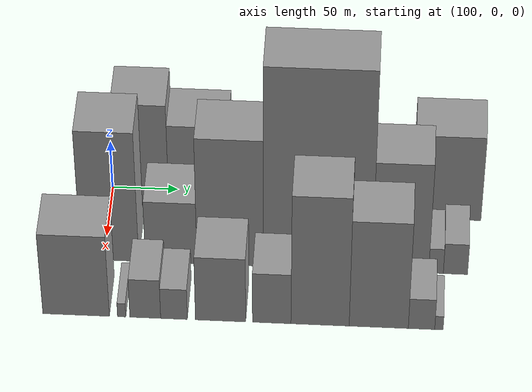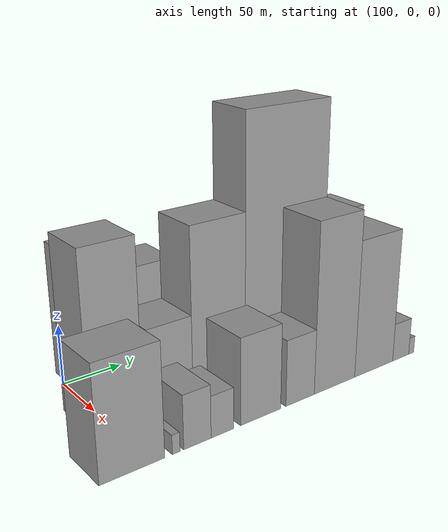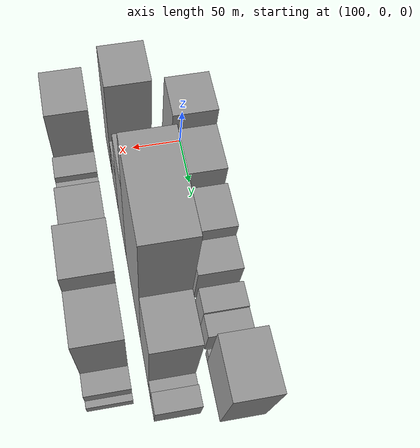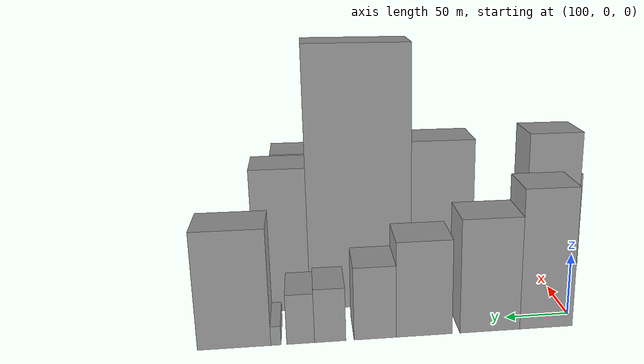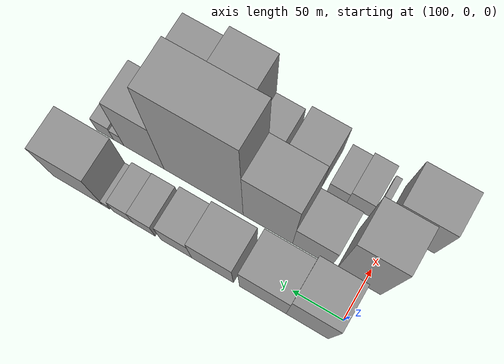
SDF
<sdf version="1.6">
 <world name="default">
  <model name="building_18">
   <static>1</static>
   <pose>100.0000 24.0642 0 0.000000 0.000000 0.000000</pose>
   <link name="link">
    <pose>0 0 55.50 0 0 0</pose>
    <collision name="collision"><geometry><box><size>40.0000 41.2345 111.0000</size></box></geometry></collision>
    <visual name="visual">
     <cast_shadows>0</cast_shadows>
     <geometry><box><size>40.0000 41.2345 111.0000</size></box></geometry>
     <material>
      <script>
       <uri>model://grey_wall/materials/scripts</uri>
       <uri>model://grey_wall/materials/textures</uri>
       <name>vrc/grey_wall</name>
      </script>
     </material>
    </visual>
   </link>
  </model>
  <model name="building_19">
   <static>1</static>
   <pose>100.0000 67.6600 0 0.000000 0.000000 0.000000</pose>
   <link name="link">
    <pose>0 0 45.00 0 0 0</pose>
    <collision name="collision"><geometry><box><size>40.0000 45.9570 90.0000</size></box></geometry></collision>
    <visual name="visual">
     <cast_shadows>0</cast_shadows>
     <geometry><box><size>40.0000 45.9570 90.0000</size></box></geometry>
     <material>
      <script>
       <uri>model://grey_wall/materials/scripts</uri>
       <uri>model://grey_wall/materials/textures</uri>
       <name>vrc/grey_wall</name>
      </script>
     </material>
    </visual>
   </link>
  </model>
  <model name="building_20">
   <static>1</static>
   <pose>100.0000 117.6161 0 0.000000 0.000000 0.000000</pose>
   <link name="link">
    <pose>0 0 37.50 0 0 0</pose>
    <collision name="collision"><geometry><box><size>40.0000 41.9552 75.0000</size></box></geometry></collision>
    <visual name="visual">
     <cast_shadows>0</cast_shadows>
     <geometry><box><size>40.0000 41.9552 75.0000</size></box></geometry>
     <material>
      <script>
       <uri>model://grey_wall/materials/scripts</uri>
       <uri>model://grey_wall/materials/textures</uri>
       <name>vrc/grey_wall</name>
      </script>
     </material>
    </visual>
   </link>
  </model>
  <model name="building_21">
   <static>1</static>
   <pose>100.0000 154.2521 0 0.000000 0.000000 0.000000</pose>
   <link name="link">
    <pose>0 0 28.50 0 0 0</pose>
    <collision name="collision"><geometry><box><size>40.0000 31.3169 57.0000</size></box></geometry></collision>
    <visual name="visual">
     <cast_shadows>0</cast_shadows>
     <geometry><box><size>40.0000 31.3169 57.0000</size></box></geometry>
     <material>
      <script>
       <uri>model://grey_wall/materials/scripts</uri>
       <uri>model://grey_wall/materials/textures</uri>
       <name>vrc/grey_wall</name>
      </script>
     </material>
    </visual>
   </link>
  </model>
  <model name="building_22">
   <static>1</static>
   <pose>100.0000 187.3715 0 0.000000 0.000000 0.000000</pose>
   <link name="link">
    <pose>0 0 21.00 0 0 0</pose>
    <collision name="collision"><geometry><box><size>40.0000 22.9218 42.0000</size></box></geometry></collision>
    <visual name="visual">
     <cast_shadows>0</cast_shadows>
     <geometry><box><size>40.0000 22.9218 42.0000</size></box></geometry>
     <material>
      <script>
       <uri>model://grey_wall/materials/scripts</uri>
       <uri>model://grey_wall/materials/textures</uri>
       <name>vrc/grey_wall</name>
      </script>
     </material>
    </visual>
   </link>
  </model>
  <model name="building_23">
   <static>1</static>
   <pose>100.0000 208.8931 0 0.000000 0.000000 0.000000</pose>
   <link name="link">
    <pose>0 0 19.50 0 0 0</pose>
    <collision name="collision"><geometry><box><size>40.0000 20.1214 39.0000</size></box></geometry></collision>
    <visual name="visual">
     <cast_shadows>0</cast_shadows>
     <geometry><box><size>40.0000 20.1214 39.0000</size></box></geometry>
     <material>
      <script>
       <uri>model://grey_wall/materials/scripts</uri>
       <uri>model://grey_wall/materials/textures</uri>
       <name>vrc/grey_wall</name>
      </script>
     </material>
    </visual>
   </link>
  </model>
  <model name="building_24">
   <static>1</static>
   <pose>100.0000 226.6315 0 0.000000 0.000000 0.000000</pose>
   <link name="link">
    <pose>0 0 7.50 0 0 0</pose>
    <collision name="collision"><geometry><box><size>40.0000 7.3554 15.0000</size></box></geometry></collision>
    <visual name="visual">
     <cast_shadows>0</cast_shadows>
     <geometry><box><size>40.0000 7.3554 15.0000</size></box></geometry>
     <material>
      <script>
       <uri>model://grey_wall/materials/scripts</uri>
       <uri>model://grey_wall/materials/textures</uri>
       <name>vrc/grey_wall</name>
      </script>
     </material>
    </visual>
   </link>
  </model>
  <model name="building_25">
   <static>1</static>
   <pose>100.0000 256.3185 0 0.000000 0.000000 0.000000</pose>
   <link name="link">
    <pose>0 0 45.00 0 0 0</pose>
    <collision name="collision"><geometry><box><size>40.0000 52.0186 90.0000</size></box></geometry></collision>
    <visual name="visual">
     <cast_shadows>0</cast_shadows>
     <geometry><box><size>40.0000 52.0186 90.0000</size></box></geometry>
     <material>
      <script>
       <uri>model://grey_wall/materials/scripts</uri>
       <uri>model://grey_wall/materials/textures</uri>
       <name>vrc/grey_wall</name>
      </script>
     </material>
    </visual>
   </link>
  </model>
  <model name="building_49">
   <static>1</static>
   <pose>155.0000 4.6128 0 0.000000 0.000000 0.000000</pose>
   <link name="link">
    <pose>0 0 69.00 0 0 0</pose>
    <collision name="collision"><geometry><box><size>40.0000 43.2898 138.0000</size></box></geometry></collision>
    <visual name="visual">
     <cast_shadows>0</cast_shadows>
     <geometry><box><size>40.0000 43.2898 138.0000</size></box></geometry>
     <material>
      <script>
       <uri>model://grey_wall/materials/scripts</uri>
       <uri>model://grey_wall/materials/textures</uri>
       <name>vrc/grey_wall</name>
      </script>
     </material>
    </visual>
   </link>
  </model>
  <model name="building_50">
   <static>1</static>
   <pose>155.0000 50.6051 0 0.000000 0.000000 0.000000</pose>
   <link name="link">
    <pose>0 0 33.00 0 0 0</pose>
    <collision name="collision"><geometry><box><size>40.0000 38.6946 66.0000</size></box></geometry></collision>
    <visual name="visual">
     <cast_shadows>0</cast_shadows>
     <geometry><box><size>40.0000 38.6946 66.0000</size></box></geometry>
     <material>
      <script>
       <uri>model://grey_wall/materials/scripts</uri>
       <uri>model://grey_wall/materials/textures</uri>
       <name>vrc/grey_wall</name>
      </script>
     </material>
    </visual>
   </link>
  </model>
  <model name="building_51">
   <static>1</static>
   <pose>155.0000 94.8474 0 0.000000 0.000000 0.000000</pose>
   <link name="link">
    <pose>0 0 67.50 0 0 0</pose>
    <collision name="collision"><geometry><box><size>40.0000 49.7900 135.0000</size></box></geometry></collision>
    <visual name="visual">
     <cast_shadows>0</cast_shadows>
     <geometry><box><size>40.0000 49.7900 135.0000</size></box></geometry>
     <material>
      <script>
       <uri>model://grey_wall/materials/scripts</uri>
       <uri>model://grey_wall/materials/textures</uri>
       <name>vrc/grey_wall</name>
      </script>
     </material>
    </visual>
   </link>
  </model>
  <model name="building_52">
   <static>1</static>
   <pose>155.0000 160.4643 0 0.000000 0.000000 0.000000</pose>
   <link name="link">
    <pose>0 0 105.00 0 0 0</pose>
    <collision name="collision"><geometry><box><size>40.0000 81.4439 210.0000</size></box></geometry></collision>
    <visual name="visual">
     <cast_shadows>0</cast_shadows>
     <geometry><box><size>40.0000 81.4439 210.0000</size></box></geometry>
     <material>
      <script>
       <uri>model://grey_wall/materials/scripts</uri>
       <uri>model://grey_wall/materials/textures</uri>
       <name>vrc/grey_wall</name>
      </script>
     </material>
    </visual>
   </link>
  </model>
  <model name="building_53">
   <static>1</static>
   <pose>155.0000 222.3354 0 0.000000 0.000000 0.000000</pose>
   <link name="link">
    <pose>0 0 58.50 0 0 0</pose>
    <collision name="collision"><geometry><box><size>40.0000 42.2984 117.0000</size></box></geometry></collision>
    <visual name="visual">
     <cast_shadows>0</cast_shadows>
     <geometry><box><size>40.0000 42.2984 117.0000</size></box></geometry>
     <material>
      <script>
       <uri>model://grey_wall/materials/scripts</uri>
       <uri>model://grey_wall/materials/textures</uri>
       <name>vrc/grey_wall</name>
      </script>
     </material>
    </visual>
   </link>
  </model>
  <model name="building_54">
   <static>1</static>
   <pose>155.0000 248.9616 0 0.000000 0.000000 0.000000</pose>
   <link name="link">
    <pose>0 0 13.50 0 0 0</pose>
    <collision name="collision"><geometry><box><size>40.0000 10.9540 27.0000</size></box></geometry></collision>
    <visual name="visual">
     <cast_shadows>0</cast_shadows>
     <geometry><box><size>40.0000 10.9540 27.0000</size></box></geometry>
     <material>
      <script>
       <uri>model://grey_wall/materials/scripts</uri>
       <uri>model://grey_wall/materials/textures</uri>
       <name>vrc/grey_wall</name>
      </script>
     </material>
    </visual>
   </link>
  </model>
  <model name="building_55">
   <static>1</static>
   <pose>155.0000 263.4858 0 0.000000 0.000000 0.000000</pose>
   <link name="link">
    <pose>0 0 16.50 0 0 0</pose>
    <collision name="collision"><geometry><box><size>40.0000 18.0944 33.0000</size></box></geometry></collision>
    <visual name="visual">
     <cast_shadows>0</cast_shadows>
     <geometry><box><size>40.0000 18.0944 33.0000</size></box></geometry>
     <material>
      <script>
       <uri>model://grey_wall/materials/scripts</uri>
       <uri>model://grey_wall/materials/textures</uri>
       <name>vrc/grey_wall</name>
      </script>
     </material>
    </visual>
   </link>
  </model>
  <model name="building_85">
   <static>1</static>
   <pose>210.0000 -15.4815 0 0.000000 0.000000 0.000000</pose>
   <link name="link">
    <pose>0 0 43.50 0 0 0</pose>
    <collision name="collision"><geometry><box><size>40.0000 49.2331 87.0000</size></box></geometry></collision>
    <visual name="visual">
     <cast_shadows>0</cast_shadows>
     <geometry><box><size>40.0000 49.2331 87.0000</size></box></geometry>
     <material>
      <script>
       <uri>model://grey_wall/materials/scripts</uri>
       <uri>model://grey_wall/materials/textures</uri>
       <name>vrc/grey_wall</name>
      </script>
     </material>
    </visual>
   </link>
  </model>
  <model name="building_86">
   <static>1</static>
   <pose>210.0000 18.1994 0 0.000000 0.000000 0.000000</pose>
   <link name="link">
    <pose>0 0 7.50 0 0 0</pose>
    <collision name="collision"><geometry><box><size>40.0000 6.1286 15.0000</size></box></geometry></collision>
    <visual name="visual">
     <cast_shadows>0</cast_shadows>
     <geometry><box><size>40.0000 6.1286 15.0000</size></box></geometry>
     <material>
      <script>
       <uri>model://grey_wall/materials/scripts</uri>
       <uri>model://grey_wall/materials/textures</uri>
       <name>vrc/grey_wall</name>
      </script>
     </material>
    </visual>
   </link>
  </model>
  <model name="building_87">
   <static>1</static>
   <pose>210.0000 35.6283 0 0.000000 0.000000 0.000000</pose>
   <link name="link">
    <pose>0 0 21.00 0 0 0</pose>
    <collision name="collision"><geometry><box><size>40.0000 22.7291 42.0000</size></box></geometry></collision>
    <visual name="visual">
     <cast_shadows>0</cast_shadows>
     <geometry><box><size>40.0000 22.7291 42.0000</size></box></geometry>
     <material>
      <script>
       <uri>model://grey_wall/materials/scripts</uri>
       <uri>model://grey_wall/materials/textures</uri>
       <name>vrc/grey_wall</name>
      </script>
     </material>
    </visual>
   </link>
  </model>
  <model name="building_88">
   <static>1</static>
   <pose>210.0000 56.8461 0 0.000000 0.000000 0.000000</pose>
   <link name="link">
    <pose>0 0 16.50 0 0 0</pose>
    <collision name="collision"><geometry><box><size>40.0000 19.7065 33.0000</size></box></geometry></collision>
    <visual name="visual">
     <cast_shadows>0</cast_shadows>
     <geometry><box><size>40.0000 19.7065 33.0000</size></box></geometry>
     <material>
      <script>
       <uri>model://grey_wall/materials/scripts</uri>
       <uri>model://grey_wall/materials/textures</uri>
       <name>vrc/grey_wall</name>
      </script>
     </material>
    </visual>
   </link>
  </model>
  <model name="building_89">
   <static>1</static>
   <pose>210.0000 91.2434 0 0.000000 0.000000 0.000000</pose>
   <link name="link">
    <pose>0 0 34.50 0 0 0</pose>
    <collision name="collision"><geometry><box><size>40.0000 37.0883 69.0000</size></box></geometry></collision>
    <visual name="visual">
     <cast_shadows>0</cast_shadows>
     <geometry><box><size>40.0000 37.0883 69.0000</size></box></geometry>
     <material>
      <script>
       <uri>model://grey_wall/materials/scripts</uri>
       <uri>model://grey_wall/materials/textures</uri>
       <name>vrc/grey_wall</name>
      </script>
     </material>
    </visual>
   </link>
  </model>
  <model name="building_90">
   <static>1</static>
   <pose>210.0000 128.9422 0 0.000000 0.000000 0.000000</pose>
   <link name="link">
    <pose>0 0 27.00 0 0 0</pose>
    <collision name="collision"><geometry><box><size>40.0000 28.3093 54.0000</size></box></geometry></collision>
    <visual name="visual">
     <cast_shadows>0</cast_shadows>
     <geometry><box><size>40.0000 28.3093 54.0000</size></box></geometry>
     <material>
      <script>
       <uri>model://grey_wall/materials/scripts</uri>
       <uri>model://grey_wall/materials/textures</uri>
       <name>vrc/grey_wall</name>
      </script>
     </material>
    </visual>
   </link>
  </model>
  <model name="building_91">
   <static>1</static>
   <pose>210.0000 164.5193 0 0.000000 0.000000 0.000000</pose>
   <link name="link">
    <pose>0 0 69.00 0 0 0</pose>
    <collision name="collision"><geometry><box><size>40.0000 42.8448 138.0000</size></box></geometry></collision>
    <visual name="visual">
     <cast_shadows>0</cast_shadows>
     <geometry><box><size>40.0000 42.8448 138.0000</size></box></geometry>
     <material>
      <script>
       <uri>model://grey_wall/materials/scripts</uri>
       <uri>model://grey_wall/materials/textures</uri>
       <name>vrc/grey_wall</name>
      </script>
     </material>
    </visual>
   </link>
  </model>
  <model name="building_92">
   <static>1</static>
   <pose>210.0000 207.6584 0 0.000000 0.000000 0.000000</pose>
   <link name="link">
    <pose>0 0 57.00 0 0 0</pose>
    <collision name="collision"><geometry><box><size>40.0000 43.4335 114.0000</size></box></geometry></collision>
    <visual name="visual">
     <cast_shadows>0</cast_shadows>
     <geometry><box><size>40.0000 43.4335 114.0000</size></box></geometry>
     <material>
      <script>
       <uri>model://grey_wall/materials/scripts</uri>
       <uri>model://grey_wall/materials/textures</uri>
       <name>vrc/grey_wall</name>
      </script>
     </material>
    </visual>
   </link>
  </model>
  <model name="building_93">
   <static>1</static>
   <pose>210.0000 239.0724 0 0.000000 0.000000 0.000000</pose>
   <link name="link">
    <pose>0 0 16.50 0 0 0</pose>
    <collision name="collision"><geometry><box><size>40.0000 19.3943 33.0000</size></box></geometry></collision>
    <visual name="visual">
     <cast_shadows>0</cast_shadows>
     <geometry><box><size>40.0000 19.3943 33.0000</size></box></geometry>
     <material>
      <script>
       <uri>model://grey_wall/materials/scripts</uri>
       <uri>model://grey_wall/materials/textures</uri>
       <name>vrc/grey_wall</name>
      </script>
     </material>
    </visual>
   </link>
  </model>
  <model name="building_94">
   <static>1</static>
   <pose>210.0000 251.8705 0 0.000000 0.000000 0.000000</pose>
   <link name="link">
    <pose>0 0 7.50 0 0 0</pose>
    <collision name="collision"><geometry><box><size>40.0000 6.2019 15.0000</size></box></geometry></collision>
    <visual name="visual">
     <cast_shadows>0</cast_shadows>
     <geometry><box><size>40.0000 6.2019 15.0000</size></box></geometry>
     <material>
      <script>
       <uri>model://grey_wall/materials/scripts</uri>
       <uri>model://grey_wall/materials/textures</uri>
       <name>vrc/grey_wall</name>
      </script>
     </material>
    </visual>
   </link>
  </model>
 </world>
</sdf>
